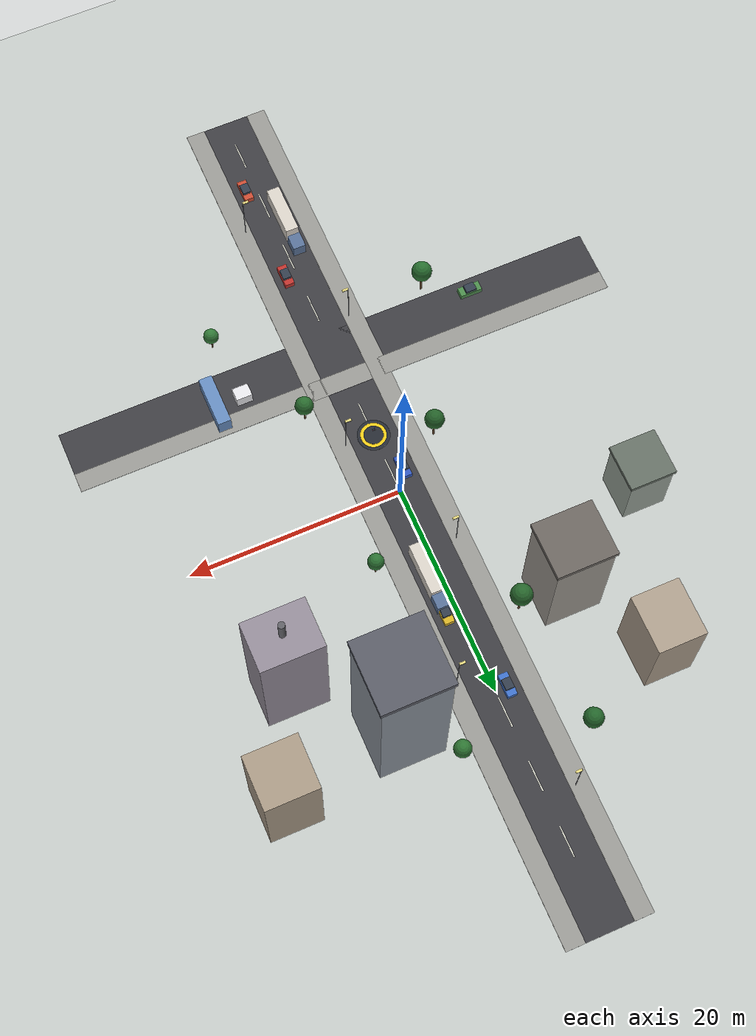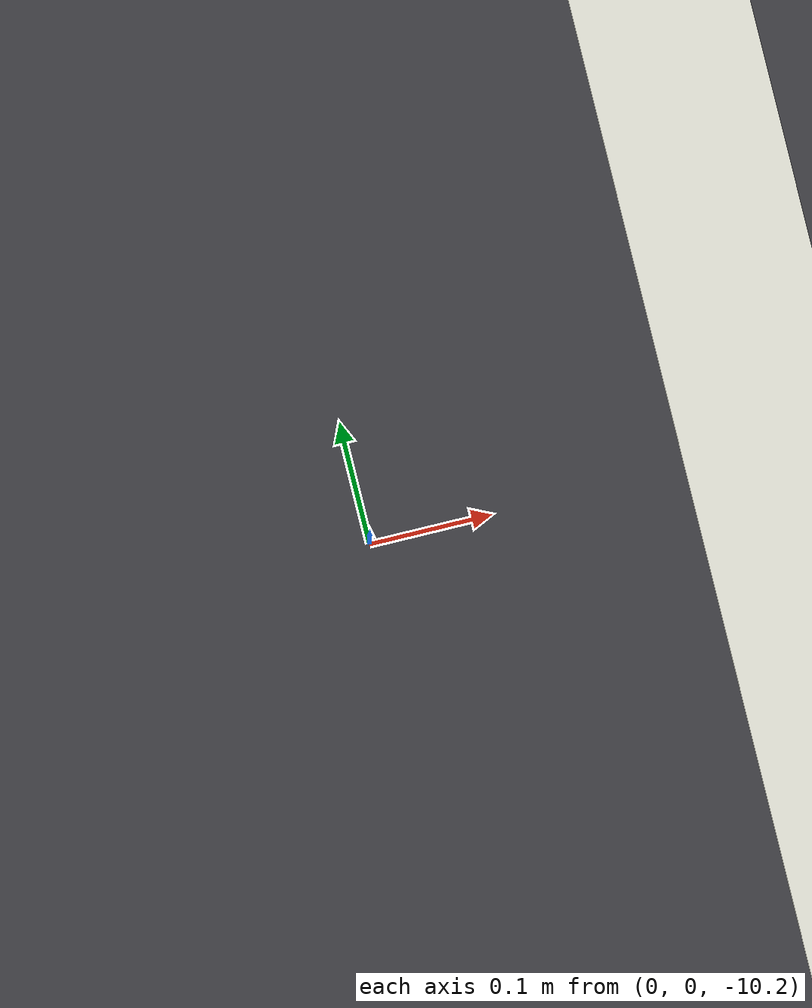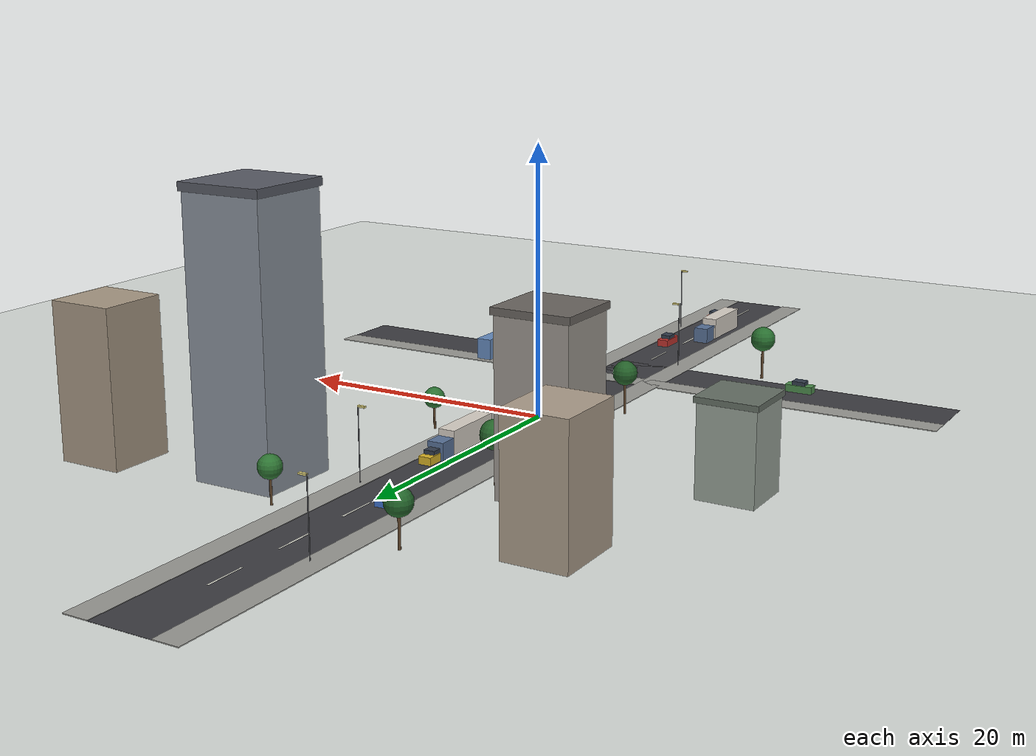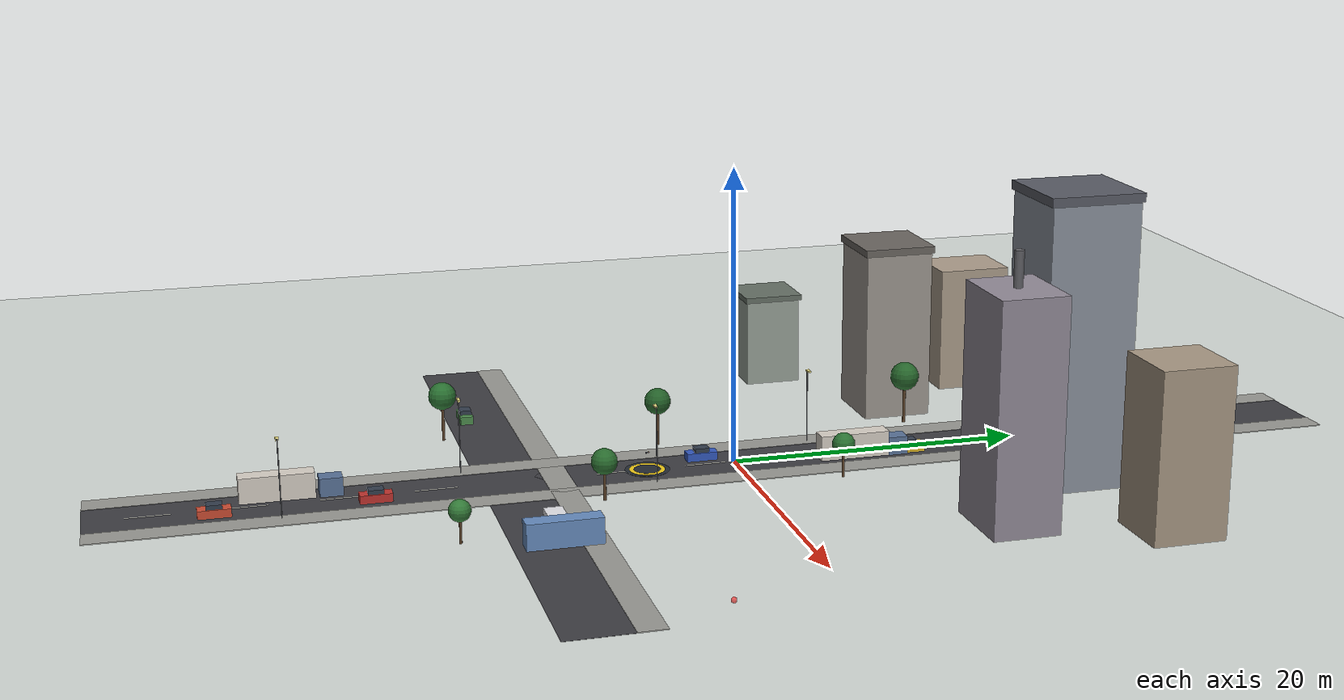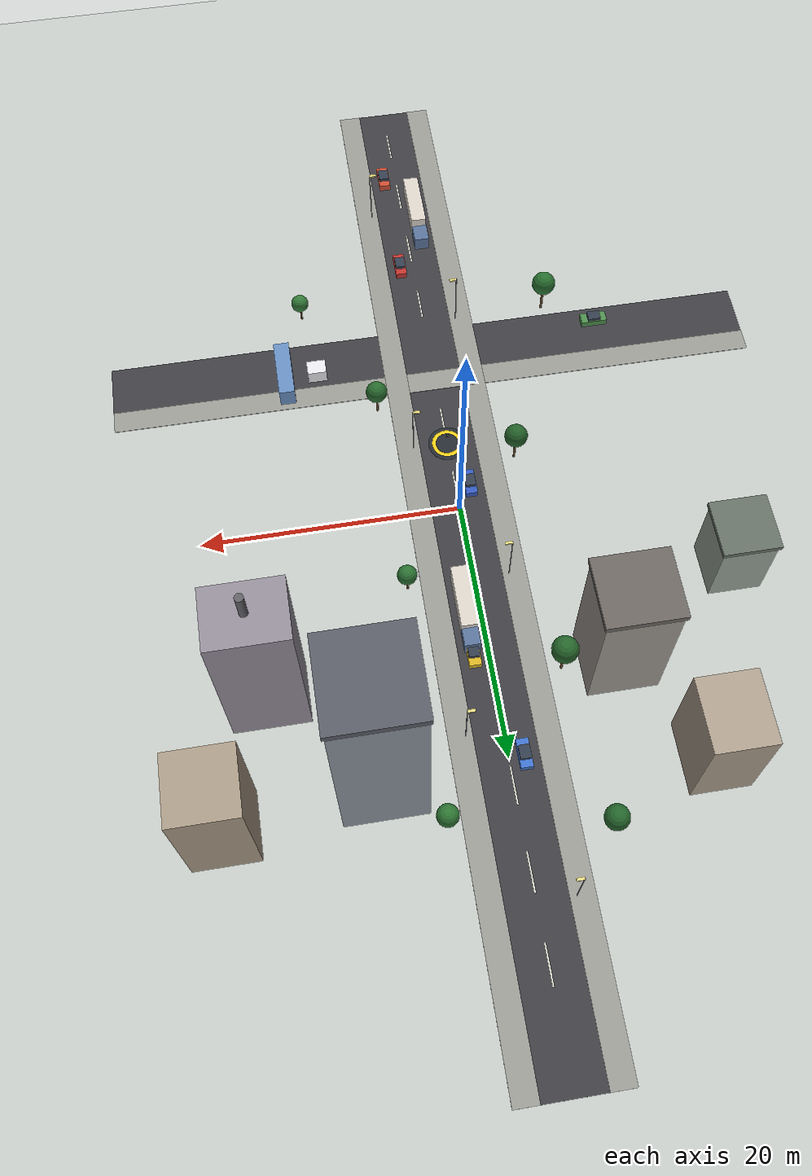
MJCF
<?xml version="1.0" encoding="utf-8"?>
<mujoco model="paper_quadrotor_city">
  <option timestep="1e-4" gravity="0 0 -9.81" integrator="implicitfast"/>

  <visual>
    <headlight ambient="0.4 0.4 0.4" diffuse="0.6 0.6 0.6" specular="0.12 0.12 0.12"/>
    <global offwidth="1920" offheight="1080"/>
    <map znear="0.01" zfar="120"/>
  </visual>

  <asset>
    <texture type="skybox" builtin="gradient" rgb1="0.5 0.6 0.78" rgb2="0.92 0.93 0.96" width="256" height="256"/>
    <texture name="grass" type="2d" builtin="checker" rgb1="0.30 0.40 0.26" rgb2="0.36 0.46 0.30" width="200" height="200"/>
    <material name="groundmat" texture="grass" texrepeat="14 14" specular="0.05"/>
  </asset>

  <worldbody>
    <light directional="true" castshadow="true" pos="6 6 14" dir="0 0 -1"/>
    <light directional="true" pos="-8 -6 10" dir="0.3 0.2 -1" diffuse="0.25 0.27 0.3"/>

    <!-- ground (collision) -->
    <geom name="floor" type="plane" size="60 60 0.1" material="groundmat"
          rgba="0.7 0.75 0.7 1" friction="1.0 0.5 0.5"/>

    <!-- ============ ROADS (visual) ====================================== -->
    <geom name="road_ns" type="box" size="2.2 42 0.01" pos="0 0 0.011"
          rgba="0.24 0.24 0.26 1" contype="0" conaffinity="0"/>
    <geom name="road_ew" type="box" size="26 2.2 0.01" pos="0 -15 0.011"
          rgba="0.24 0.24 0.26 1" contype="0" conaffinity="0"/>
    <!-- lane dashes -->
    <geom name="dash1" type="box" size="0.06 1.4 0.005" pos="0 -38 0.021" rgba="0.9 0.9 0.85 1" contype="0" conaffinity="0"/>
    <geom name="dash2" type="box" size="0.06 1.4 0.005" pos="0 -32 0.021" rgba="0.9 0.9 0.85 1" contype="0" conaffinity="0"/>
    <geom name="dash3" type="box" size="0.06 1.4 0.005" pos="0 -26 0.021" rgba="0.9 0.9 0.85 1" contype="0" conaffinity="0"/>
    <geom name="dash4" type="box" size="0.06 1.4 0.005" pos="0 -20 0.021" rgba="0.9 0.9 0.85 1" contype="0" conaffinity="0"/>
    <geom name="dash5" type="box" size="0.06 1.4 0.005" pos="0 -8 0.021" rgba="0.9 0.9 0.85 1" contype="0" conaffinity="0"/>
    <geom name="dash6" type="box" size="0.06 1.4 0.005" pos="0 -2 0.021" rgba="0.9 0.9 0.85 1" contype="0" conaffinity="0"/>
    <geom name="dash7" type="box" size="0.06 1.4 0.005" pos="0 4 0.021" rgba="0.9 0.9 0.85 1" contype="0" conaffinity="0"/>
    <geom name="dash8" type="box" size="0.06 1.4 0.005" pos="0 10 0.021" rgba="0.9 0.9 0.85 1" contype="0" conaffinity="0"/>
    <geom name="dash9" type="box" size="0.06 1.4 0.005" pos="0 16 0.021" rgba="0.9 0.9 0.85 1" contype="0" conaffinity="0"/>
    <geom name="dash10" type="box" size="0.06 1.4 0.005" pos="0 22 0.021" rgba="0.9 0.9 0.85 1" contype="0" conaffinity="0"/>
    <geom name="dash11" type="box" size="0.06 1.4 0.005" pos="0 28 0.021" rgba="0.9 0.9 0.85 1" contype="0" conaffinity="0"/>
    <geom name="dash12" type="box" size="0.06 1.4 0.005" pos="0 34 0.021" rgba="0.9 0.9 0.85 1" contype="0" conaffinity="0"/>

    <!-- sidewalks (collision, slight raise) -->
    <geom name="sidewalk_e" type="box" size="0.9 42 0.03" pos="3.1 0 0.03" rgba="0.6 0.6 0.58 1" friction="1 0.5 0.5"/>
    <geom name="sidewalk_w" type="box" size="0.9 42 0.03" pos="-3.1 0 0.03" rgba="0.6 0.6 0.58 1" friction="1 0.5 0.5"/>
    <geom name="sidewalk_n" type="box" size="26 0.9 0.03" pos="0 -12.1 0.03" rgba="0.6 0.6 0.58 1" friction="1 0.5 0.5"/>

    <!-- helipad launch area -->
    <geom name="pad_base" type="cylinder" size="1.5 0.02" pos="0 -6 0.02"
          rgba="0.15 0.17 0.2 1" friction="1 0.5 0.5"/>
    <geom name="pad_ring" type="cylinder" size="1.2 0.025" pos="0 -6 0.026"
          rgba="0.95 0.8 0.1 1" contype="0" conaffinity="0"/>
    <geom name="pad_inner" type="cylinder" size="0.9 0.028" pos="0 -6 0.028"
          rgba="0.15 0.17 0.2 1" contype="0" conaffinity="0"/>

    <!-- ============ BUILDINGS (collision) =============================== -->
    <geom name="bldg_1" type="box" size="2.6 2.4 6.0" pos="-9 14 6.0" rgba="0.62 0.60 0.57 1"/>
    <geom name="bldg_1r" type="box" size="2.75 2.55 0.25" pos="-9 14 12.1" rgba="0.42 0.4 0.38 1"/>
    <geom name="bldg_2" type="box" size="3.0 3.0 9.5" pos="9 20 9.5" rgba="0.55 0.58 0.62 1"/>
    <geom name="bldg_2r" type="box" size="3.15 3.15 0.3" pos="9 20 19.1" rgba="0.35 0.36 0.4 1"/>
    <geom name="bldg_3" type="box" size="2.2 2.6 4.5" pos="-14 22 4.5" rgba="0.68 0.62 0.55 1"/>
    <geom name="bldg_4" type="box" size="2.8 2.2 7.5" pos="16 13 7.5" rgba="0.58 0.55 0.6 1"/>
    <geom name="bldg_4r" type="cylinder" size="0.3 1.4" pos="16 13 15.9" rgba="0.38 0.38 0.4 1"/>
    <geom name="bldg_5" type="box" size="2.4 2.4 5.5" pos="20 22 5.5" rgba="0.66 0.6 0.52 1"/>
    <geom name="bldg_6" type="box" size="2.0 2.0 3.2" pos="-19 8 3.2" rgba="0.6 0.64 0.6 1"/>
    <geom name="bldg_6r" type="box" size="2.15 2.15 0.2" pos="-19 8 6.5" rgba="0.4 0.44 0.4 1"/>

    <!-- ============ TREES (trunk + canopy, both collision) ================ -->
    <geom name="tree_1_trunk" type="cylinder" size="0.09 1.4" pos="5 -10 1.4" rgba="0.36 0.26 0.16 1"/>
    <geom name="tree_1_top" type="sphere" size="0.85" pos="5 -10 2.6" rgba="0.16 0.42 0.18 1"/>
    <geom name="tree_2_trunk" type="cylinder" size="0.09 1.6" pos="-5 -4 1.6" rgba="0.36 0.26 0.16 1"/>
    <geom name="tree_2_top" type="sphere" size="0.9" pos="-5 -4 3.1" rgba="0.14 0.38 0.16 1"/>
    <geom name="tree_3_trunk" type="cylinder" size="0.08 1.2" pos="5 6 1.2" rgba="0.36 0.26 0.16 1"/>
    <geom name="tree_3_top" type="sphere" size="0.75" pos="5 6 2.3" rgba="0.17 0.45 0.2 1"/>
    <geom name="tree_4_trunk" type="cylinder" size="0.1 1.8" pos="-5 14 1.8" rgba="0.36 0.26 0.16 1"/>
    <geom name="tree_4_top" type="sphere" size="1.0" pos="-5 14 3.4" rgba="0.15 0.4 0.17 1"/>
    <geom name="tree_5_trunk" type="cylinder" size="0.08 1.3" pos="5 24 1.3" rgba="0.36 0.26 0.16 1"/>
    <geom name="tree_5_top" type="sphere" size="0.8" pos="5 24 2.5" rgba="0.18 0.46 0.2 1"/>
    <geom name="tree_6_trunk" type="cylinder" size="0.09 1.5" pos="-6 26 1.5" rgba="0.36 0.26 0.16 1"/>
    <geom name="tree_6_top" type="sphere" size="0.9" pos="-6 26 2.9" rgba="0.14 0.4 0.17 1"/>
    <geom name="tree_7_trunk" type="cylinder" size="0.1 1.7" pos="-10 -18 1.7" rgba="0.36 0.26 0.16 1"/>
    <geom name="tree_7_top" type="sphere" size="0.95" pos="-10 -18 3.2" rgba="0.16 0.44 0.19 1"/>
    <geom name="tree_8_trunk" type="cylinder" size="0.08 1.1" pos="10 -20 1.1" rgba="0.36 0.26 0.16 1"/>
    <geom name="tree_8_top" type="sphere" size="0.7" pos="10 -20 2.1" rgba="0.2 0.48 0.22 1"/>

    <!-- ============ CARS on roads (collision, static) ==================== -->
    <!-- car: body + cabin, oriented along the N-S road -->
    <geom name="car_1" type="box" size="0.45 1.05 0.28" pos="1.1 -24 0.3" rgba="0.75 0.2 0.18 1"/>
    <geom name="car_1c" type="box" size="0.4 0.5 0.22" pos="1.1 -24 0.66" rgba="0.2 0.24 0.3 1" contype="0" conaffinity="0"/>
    <geom name="car_2" type="box" size="0.45 1.05 0.28" pos="-1.1 -2 0.3" rgba="0.2 0.35 0.75 1"/>
    <geom name="car_2c" type="box" size="0.4 0.5 0.22" pos="-1.1 -2 0.66" rgba="0.2 0.24 0.3 1" contype="0" conaffinity="0"/>
    <geom name="car_3" type="box" size="0.45 1.05 0.28" pos="1.1 12 0.3" rgba="0.85 0.7 0.15 1"/>
    <geom name="car_3c" type="box" size="0.4 0.5 0.22" pos="1.1 12 0.66" rgba="0.2 0.24 0.3 1" contype="0" conaffinity="0"/>
    <!-- car on the E-W road (rotated 90 deg) -->
    <geom name="car_4" type="box" size="1.05 0.45 0.28" pos="-14 -15.9 0.3" rgba="0.3 0.55 0.3 1"/>
    <geom name="car_4c" type="box" size="0.5 0.4 0.22" pos="-14 -15.9 0.66" rgba="0.2 0.24 0.3 1" contype="0" conaffinity="0"/>

    <!-- ============ TRUCKS (bigger, distinct: cab + trailer) ============= -->
    <geom name="truck_1_trailer" type="box" size="0.62 2.4 0.85" pos="-1.1 -30 0.9" rgba="0.85 0.82 0.78 1"/>
    <geom name="truck_1_cab" type="box" size="0.6 0.75 0.62" pos="-1.1 -26.6 0.64" rgba="0.35 0.45 0.6 1"/>
    <geom name="truck_2_trailer" type="box" size="0.62 2.4 0.85" pos="12 -14.1 0.9" rgba="0.4 0.55 0.75 1"/>
    <geom name="truck_2_cab" type="box" size="0.75 0.6 0.62" pos="9.4 -14.1 0.64" rgba="0.9 0.9 0.92 1"/>

    <!-- ============ STREET LAMPS (pole collision, head visual) =========== -->
    <geom name="lamp_1_pole" type="cylinder" size="0.035 2.6" pos="2.7 -30 2.6" rgba="0.35 0.36 0.38 1"/>
    <geom name="lamp_1_head" type="box" size="0.28 0.1 0.06" pos="2.42 -30 5.15" rgba="0.9 0.85 0.5 1" contype="0" conaffinity="0"/>
    <geom name="lamp_2_pole" type="cylinder" size="0.035 2.6" pos="-2.7 -18 2.6" rgba="0.35 0.36 0.38 1"/>
    <geom name="lamp_2_head" type="box" size="0.28 0.1 0.06" pos="-2.42 -18 5.15" rgba="0.9 0.85 0.5 1" contype="0" conaffinity="0"/>
    <geom name="lamp_3_pole" type="cylinder" size="0.035 2.6" pos="2.7 -6 2.6" rgba="0.35 0.36 0.38 1"/>
    <geom name="lamp_3_head" type="box" size="0.28 0.1 0.06" pos="2.42 -6 5.15" rgba="0.9 0.85 0.5 1" contype="0" conaffinity="0"/>
    <geom name="lamp_4_pole" type="cylinder" size="0.035 2.6" pos="-2.7 6 2.6" rgba="0.35 0.36 0.38 1"/>
    <geom name="lamp_4_head" type="box" size="0.28 0.1 0.06" pos="-2.42 6 5.15" rgba="0.9 0.85 0.5 1" contype="0" conaffinity="0"/>
    <geom name="lamp_5_pole" type="cylinder" size="0.035 2.6" pos="2.7 18 2.6" rgba="0.35 0.36 0.38 1"/>
    <geom name="lamp_5_head" type="box" size="0.28 0.1 0.06" pos="2.42 18 5.15" rgba="0.9 0.85 0.5 1" contype="0" conaffinity="0"/>
    <geom name="lamp_6_pole" type="cylinder" size="0.035 2.6" pos="-2.7 30 2.6" rgba="0.35 0.36 0.38 1"/>
    <geom name="lamp_6_head" type="box" size="0.28 0.1 0.06" pos="-2.42 30 5.15" rgba="0.9 0.85 0.5 1" contype="0" conaffinity="0"/>

    <body name="car_m1" pos="1.1 -34 0.3">
      <freejoint name="car_m1_j"/>
      <geom name="car_m1" type="box" size="0.45 1.05 0.28" rgba="0.8 0.3 0.2 1" friction="1 0.5 0.5"/>
      <geom name="car_m1c" type="box" size="0.4 0.5 0.22" pos="0 0 0.36" rgba="0.2 0.24 0.3 1" contype="0" conaffinity="0"/>
    </body>
    <body name="car_m2" pos="-1.1 20 0.3">
      <freejoint name="car_m2_j"/>
      <geom name="car_m2" type="box" size="0.45 1.05 0.28" rgba="0.25 0.45 0.8 1" friction="1 0.5 0.5"/>
      <geom name="car_m2c" type="box" size="0.4 0.5 0.22" pos="0 0 0.36" rgba="0.2 0.24 0.3 1" contype="0" conaffinity="0"/>
    </body>
    <body name="truck_m1" pos="1.1 8 0.9">
      <freejoint name="truck_m1_j"/>
      <geom name="truck_m1_trailer" type="box" size="0.62 2.4 0.85" rgba="0.85 0.82 0.78 1" friction="1 0.5 0.5"/>
      <geom name="truck_m1_cab" type="box" size="0.6 0.75 0.62" pos="0 3.0 -0.26" rgba="0.35 0.45 0.6 1" contype="0" conaffinity="0"/>
    </body>

    <geom name="mk_d0" type="sphere" size="0.07" pos="0 0 -10" rgba="1 0.85 0.2 0.9" contype="0" conaffinity="0"/>
    <geom name="mk_d1" type="sphere" size="0.07" pos="0 0 -10" rgba="1 0.85 0.2 0.9" contype="0" conaffinity="0"/>
    <geom name="mk_d2" type="sphere" size="0.07" pos="0 0 -10" rgba="1 0.85 0.2 0.9" contype="0" conaffinity="0"/>
    <geom name="mk_d3" type="sphere" size="0.07" pos="0 0 -10" rgba="1 0.85 0.2 0.9" contype="0" conaffinity="0"/>
    <geom name="mk_d4" type="sphere" size="0.07" pos="0 0 -10" rgba="1 0.85 0.2 0.9" contype="0" conaffinity="0"/>
    <geom name="mk_d5" type="sphere" size="0.07" pos="0 0 -10" rgba="1 0.85 0.2 0.9" contype="0" conaffinity="0"/>
    <geom name="mk_d6" type="sphere" size="0.07" pos="0 0 -10" rgba="1 0.85 0.2 0.9" contype="0" conaffinity="0"/>
    <geom name="mk_d7" type="sphere" size="0.07" pos="0 0 -10" rgba="1 0.85 0.2 0.9" contype="0" conaffinity="0"/>
    <geom name="mk_d8" type="sphere" size="0.07" pos="0 0 -10" rgba="1 0.85 0.2 0.9" contype="0" conaffinity="0"/>
    <geom name="mk_d9" type="sphere" size="0.07" pos="0 0 -10" rgba="1 0.85 0.2 0.9" contype="0" conaffinity="0"/>
    <geom name="mk_d10" type="sphere" size="0.07" pos="0 0 -10" rgba="1 0.85 0.2 0.9" contype="0" conaffinity="0"/>
    <geom name="mk_d11" type="sphere" size="0.07" pos="0 0 -10" rgba="1 0.85 0.2 0.9" contype="0" conaffinity="0"/>
    <geom name="mk_d12" type="sphere" size="0.07" pos="0 0 -10" rgba="1 0.85 0.2 0.9" contype="0" conaffinity="0"/>
    <geom name="mk_d13" type="sphere" size="0.07" pos="0 0 -10" rgba="1 0.85 0.2 0.9" contype="0" conaffinity="0"/>
    <geom name="mk_d14" type="sphere" size="0.07" pos="0 0 -10" rgba="1 0.85 0.2 0.9" contype="0" conaffinity="0"/>
    <geom name="mk_d15" type="sphere" size="0.07" pos="0 0 -10" rgba="1 0.85 0.2 0.9" contype="0" conaffinity="0"/>
    <geom name="mk_d16" type="sphere" size="0.07" pos="0 0 -10" rgba="1 0.85 0.2 0.9" contype="0" conaffinity="0"/>
    <geom name="mk_d17" type="sphere" size="0.07" pos="0 0 -10" rgba="1 0.85 0.2 0.9" contype="0" conaffinity="0"/>
    <geom name="mk_d18" type="sphere" size="0.07" pos="0 0 -10" rgba="1 0.85 0.2 0.9" contype="0" conaffinity="0"/>
    <geom name="mk_d19" type="sphere" size="0.07" pos="0 0 -10" rgba="1 0.85 0.2 0.9" contype="0" conaffinity="0"/>
    <geom name="mk_d20" type="sphere" size="0.07" pos="0 0 -10" rgba="1 0.85 0.2 0.9" contype="0" conaffinity="0"/>
    <geom name="mk_d21" type="sphere" size="0.07" pos="0 0 -10" rgba="1 0.85 0.2 0.9" contype="0" conaffinity="0"/>
    <geom name="mk_d22" type="sphere" size="0.07" pos="0 0 -10" rgba="1 0.85 0.2 0.9" contype="0" conaffinity="0"/>
    <geom name="mk_d23" type="sphere" size="0.07" pos="0 0 -10" rgba="1 0.85 0.2 0.9" contype="0" conaffinity="0"/>
    <geom name="mk_d24" type="sphere" size="0.07" pos="0 0 -10" rgba="1 0.85 0.2 0.9" contype="0" conaffinity="0"/>
    <geom name="mk_d25" type="sphere" size="0.07" pos="0 0 -10" rgba="1 0.85 0.2 0.9" contype="0" conaffinity="0"/>
    <geom name="mk_d26" type="sphere" size="0.07" pos="0 0 -10" rgba="1 0.85 0.2 0.9" contype="0" conaffinity="0"/>
    <geom name="mk_d27" type="sphere" size="0.07" pos="0 0 -10" rgba="1 0.85 0.2 0.9" contype="0" conaffinity="0"/>
    <geom name="mk_d28" type="sphere" size="0.07" pos="0 0 -10" rgba="1 0.85 0.2 0.9" contype="0" conaffinity="0"/>
    <geom name="mk_d29" type="sphere" size="0.07" pos="0 0 -10" rgba="1 0.85 0.2 0.9" contype="0" conaffinity="0"/>
    <geom name="mk_d30" type="sphere" size="0.07" pos="0 0 -10" rgba="1 0.85 0.2 0.9" contype="0" conaffinity="0"/>
    <geom name="mk_d31" type="sphere" size="0.07" pos="0 0 -10" rgba="1 0.85 0.2 0.9" contype="0" conaffinity="0"/>
    <geom name="mk_d32" type="sphere" size="0.07" pos="0 0 -10" rgba="1 0.85 0.2 0.9" contype="0" conaffinity="0"/>
    <geom name="mk_d33" type="sphere" size="0.07" pos="0 0 -10" rgba="1 0.85 0.2 0.9" contype="0" conaffinity="0"/>
    <geom name="mk_d34" type="sphere" size="0.07" pos="0 0 -10" rgba="1 0.85 0.2 0.9" contype="0" conaffinity="0"/>
    <geom name="mk_d35" type="sphere" size="0.07" pos="0 0 -10" rgba="1 0.85 0.2 0.9" contype="0" conaffinity="0"/>
    <geom name="mk_d36" type="sphere" size="0.07" pos="0 0 -10" rgba="1 0.85 0.2 0.9" contype="0" conaffinity="0"/>
    <geom name="mk_d37" type="sphere" size="0.07" pos="0 0 -10" rgba="1 0.85 0.2 0.9" contype="0" conaffinity="0"/>
    <geom name="mk_d38" type="sphere" size="0.07" pos="0 0 -10" rgba="1 0.85 0.2 0.9" contype="0" conaffinity="0"/>
    <geom name="mk_d39" type="sphere" size="0.07" pos="0 0 -10" rgba="1 0.85 0.2 0.9" contype="0" conaffinity="0"/>
    <geom name="mk_d40" type="sphere" size="0.07" pos="0 0 -10" rgba="1 0.85 0.2 0.9" contype="0" conaffinity="0"/>
    <geom name="mk_d41" type="sphere" size="0.07" pos="0 0 -10" rgba="1 0.85 0.2 0.9" contype="0" conaffinity="0"/>
    <geom name="mk_d42" type="sphere" size="0.07" pos="0 0 -10" rgba="1 0.85 0.2 0.9" contype="0" conaffinity="0"/>
    <geom name="mk_d43" type="sphere" size="0.07" pos="0 0 -10" rgba="1 0.85 0.2 0.9" contype="0" conaffinity="0"/>
    <geom name="mk_d44" type="sphere" size="0.07" pos="0 0 -10" rgba="1 0.85 0.2 0.9" contype="0" conaffinity="0"/>
    <geom name="mk_d45" type="sphere" size="0.07" pos="0 0 -10" rgba="1 0.85 0.2 0.9" contype="0" conaffinity="0"/>
    <geom name="mk_d46" type="sphere" size="0.07" pos="0 0 -10" rgba="1 0.85 0.2 0.9" contype="0" conaffinity="0"/>
    <geom name="mk_d47" type="sphere" size="0.07" pos="0 0 -10" rgba="1 0.85 0.2 0.9" contype="0" conaffinity="0"/>
    <geom name="mk_d48" type="sphere" size="0.07" pos="0 0 -10" rgba="1 0.85 0.2 0.9" contype="0" conaffinity="0"/>
    <geom name="mk_d49" type="sphere" size="0.07" pos="0 0 -10" rgba="1 0.85 0.2 0.9" contype="0" conaffinity="0"/>
    <geom name="mk_d50" type="sphere" size="0.07" pos="0 0 -10" rgba="1 0.85 0.2 0.9" contype="0" conaffinity="0"/>
    <geom name="mk_d51" type="sphere" size="0.07" pos="0 0 -10" rgba="1 0.85 0.2 0.9" contype="0" conaffinity="0"/>
    <geom name="mk_d52" type="sphere" size="0.07" pos="0 0 -10" rgba="1 0.85 0.2 0.9" contype="0" conaffinity="0"/>
    <geom name="mk_d53" type="sphere" size="0.07" pos="0 0 -10" rgba="1 0.85 0.2 0.9" contype="0" conaffinity="0"/>
    <geom name="mk_d54" type="sphere" size="0.07" pos="0 0 -10" rgba="1 0.85 0.2 0.9" contype="0" conaffinity="0"/>
    <geom name="mk_d55" type="sphere" size="0.07" pos="0 0 -10" rgba="1 0.85 0.2 0.9" contype="0" conaffinity="0"/>
    <geom name="mk_d56" type="sphere" size="0.07" pos="0 0 -10" rgba="1 0.85 0.2 0.9" contype="0" conaffinity="0"/>
    <geom name="mk_d57" type="sphere" size="0.07" pos="0 0 -10" rgba="1 0.85 0.2 0.9" contype="0" conaffinity="0"/>
    <geom name="mk_d58" type="sphere" size="0.07" pos="0 0 -10" rgba="1 0.85 0.2 0.9" contype="0" conaffinity="0"/>
    <geom name="mk_d59" type="sphere" size="0.07" pos="0 0 -10" rgba="1 0.85 0.2 0.9" contype="0" conaffinity="0"/>
    <geom name="mk_d60" type="sphere" size="0.07" pos="0 0 -10" rgba="1 0.85 0.2 0.9" contype="0" conaffinity="0"/>
    <geom name="mk_d61" type="sphere" size="0.07" pos="0 0 -10" rgba="1 0.85 0.2 0.9" contype="0" conaffinity="0"/>
    <geom name="mk_d62" type="sphere" size="0.07" pos="0 0 -10" rgba="1 0.85 0.2 0.9" contype="0" conaffinity="0"/>
    <geom name="mk_d63" type="sphere" size="0.07" pos="0 0 -10" rgba="1 0.85 0.2 0.9" contype="0" conaffinity="0"/>
    <geom name="mk_d64" type="sphere" size="0.07" pos="0 0 -10" rgba="1 0.85 0.2 0.9" contype="0" conaffinity="0"/>
    <geom name="mk_d65" type="sphere" size="0.07" pos="0 0 -10" rgba="1 0.85 0.2 0.9" contype="0" conaffinity="0"/>
    <geom name="mk_d66" type="sphere" size="0.07" pos="0 0 -10" rgba="1 0.85 0.2 0.9" contype="0" conaffinity="0"/>
    <geom name="mk_d67" type="sphere" size="0.07" pos="0 0 -10" rgba="1 0.85 0.2 0.9" contype="0" conaffinity="0"/>
    <geom name="mk_d68" type="sphere" size="0.07" pos="0 0 -10" rgba="1 0.85 0.2 0.9" contype="0" conaffinity="0"/>
    <geom name="mk_d69" type="sphere" size="0.07" pos="0 0 -10" rgba="1 0.85 0.2 0.9" contype="0" conaffinity="0"/>
    <geom name="mk_d70" type="sphere" size="0.07" pos="0 0 -10" rgba="1 0.85 0.2 0.9" contype="0" conaffinity="0"/>
    <geom name="mk_d71" type="sphere" size="0.07" pos="0 0 -10" rgba="1 0.85 0.2 0.9" contype="0" conaffinity="0"/>
    <geom name="mk_d72" type="sphere" size="0.07" pos="0 0 -10" rgba="1 0.85 0.2 0.9" contype="0" conaffinity="0"/>
    <geom name="mk_d73" type="sphere" size="0.07" pos="0 0 -10" rgba="1 0.85 0.2 0.9" contype="0" conaffinity="0"/>
    <geom name="mk_d74" type="sphere" size="0.07" pos="0 0 -10" rgba="1 0.85 0.2 0.9" contype="0" conaffinity="0"/>
    <geom name="mk_d75" type="sphere" size="0.07" pos="0 0 -10" rgba="1 0.85 0.2 0.9" contype="0" conaffinity="0"/>
    <geom name="mk_d76" type="sphere" size="0.07" pos="0 0 -10" rgba="1 0.85 0.2 0.9" contype="0" conaffinity="0"/>
    <geom name="mk_d77" type="sphere" size="0.07" pos="0 0 -10" rgba="1 0.85 0.2 0.9" contype="0" conaffinity="0"/>
    <geom name="mk_d78" type="sphere" size="0.07" pos="0 0 -10" rgba="1 0.85 0.2 0.9" contype="0" conaffinity="0"/>
    <geom name="mk_d79" type="sphere" size="0.07" pos="0 0 -10" rgba="1 0.85 0.2 0.9" contype="0" conaffinity="0"/>
    <geom name="mk_d80" type="sphere" size="0.07" pos="0 0 -10" rgba="1 0.85 0.2 0.9" contype="0" conaffinity="0"/>
    <geom name="mk_d81" type="sphere" size="0.07" pos="0 0 -10" rgba="1 0.85 0.2 0.9" contype="0" conaffinity="0"/>
    <geom name="mk_d82" type="sphere" size="0.07" pos="0 0 -10" rgba="1 0.85 0.2 0.9" contype="0" conaffinity="0"/>
    <geom name="mk_d83" type="sphere" size="0.07" pos="0 0 -10" rgba="1 0.85 0.2 0.9" contype="0" conaffinity="0"/>
    <geom name="mk_d84" type="sphere" size="0.07" pos="0 0 -10" rgba="1 0.85 0.2 0.9" contype="0" conaffinity="0"/>
    <geom name="mk_d85" type="sphere" size="0.07" pos="0 0 -10" rgba="1 0.85 0.2 0.9" contype="0" conaffinity="0"/>
    <geom name="mk_d86" type="sphere" size="0.07" pos="0 0 -10" rgba="1 0.85 0.2 0.9" contype="0" conaffinity="0"/>
    <geom name="mk_d87" type="sphere" size="0.07" pos="0 0 -10" rgba="1 0.85 0.2 0.9" contype="0" conaffinity="0"/>
    <geom name="mk_d88" type="sphere" size="0.07" pos="0 0 -10" rgba="1 0.85 0.2 0.9" contype="0" conaffinity="0"/>
    <geom name="mk_d89" type="sphere" size="0.07" pos="0 0 -10" rgba="1 0.85 0.2 0.9" contype="0" conaffinity="0"/>
    <geom name="mk_d90" type="sphere" size="0.07" pos="0 0 -10" rgba="1 0.85 0.2 0.9" contype="0" conaffinity="0"/>
    <geom name="mk_d91" type="sphere" size="0.07" pos="0 0 -10" rgba="1 0.85 0.2 0.9" contype="0" conaffinity="0"/>
    <geom name="mk_d92" type="sphere" size="0.07" pos="0 0 -10" rgba="1 0.85 0.2 0.9" contype="0" conaffinity="0"/>
    <geom name="mk_d93" type="sphere" size="0.07" pos="0 0 -10" rgba="1 0.85 0.2 0.9" contype="0" conaffinity="0"/>
    <geom name="mk_d94" type="sphere" size="0.07" pos="0 0 -10" rgba="1 0.85 0.2 0.9" contype="0" conaffinity="0"/>
    <geom name="mk_d95" type="sphere" size="0.07" pos="0 0 -10" rgba="1 0.85 0.2 0.9" contype="0" conaffinity="0"/>
    <geom name="mk_w0" type="sphere" size="0.16" pos="0 0 -10" rgba="0.2 0.9 0.3 0.95" contype="0" conaffinity="0"/>
    <geom name="mk_w1" type="sphere" size="0.16" pos="0 0 -10" rgba="0.2 0.9 0.3 0.95" contype="0" conaffinity="0"/>
    <geom name="mk_w2" type="sphere" size="0.16" pos="0 0 -10" rgba="0.2 0.9 0.3 0.95" contype="0" conaffinity="0"/>
    <geom name="mk_w3" type="sphere" size="0.16" pos="0 0 -10" rgba="0.2 0.9 0.3 0.95" contype="0" conaffinity="0"/>
    <geom name="mk_w4" type="sphere" size="0.16" pos="0 0 -10" rgba="0.2 0.9 0.3 0.95" contype="0" conaffinity="0"/>
    <geom name="mk_w5" type="sphere" size="0.16" pos="0 0 -10" rgba="0.2 0.9 0.3 0.95" contype="0" conaffinity="0"/>
    <geom name="mk_w6" type="sphere" size="0.16" pos="0 0 -10" rgba="0.2 0.9 0.3 0.95" contype="0" conaffinity="0"/>
    <geom name="mk_w7" type="sphere" size="0.16" pos="0 0 -10" rgba="0.2 0.9 0.3 0.95" contype="0" conaffinity="0"/>
    <geom name="mk_w8" type="sphere" size="0.16" pos="0 0 -10" rgba="0.2 0.9 0.3 0.95" contype="0" conaffinity="0"/>
    <geom name="mk_w9" type="sphere" size="0.16" pos="0 0 -10" rgba="0.2 0.9 0.3 0.95" contype="0" conaffinity="0"/>
    <geom name="mk_w10" type="sphere" size="0.16" pos="0 0 -10" rgba="0.2 0.9 0.3 0.95" contype="0" conaffinity="0"/>
    <geom name="mk_w11" type="sphere" size="0.16" pos="0 0 -10" rgba="0.2 0.9 0.3 0.95" contype="0" conaffinity="0"/>
    <geom name="mk_w12" type="sphere" size="0.16" pos="0 0 -10" rgba="0.2 0.9 0.3 0.95" contype="0" conaffinity="0"/>
    <geom name="mk_w13" type="sphere" size="0.16" pos="0 0 -10" rgba="0.2 0.9 0.3 0.95" contype="0" conaffinity="0"/>
    <geom name="mk_w14" type="sphere" size="0.16" pos="0 0 -10" rgba="0.2 0.9 0.3 0.95" contype="0" conaffinity="0"/>
    <geom name="mk_w15" type="sphere" size="0.16" pos="0 0 -10" rgba="0.2 0.9 0.3 0.95" contype="0" conaffinity="0"/>
    <geom name="mk_w16" type="sphere" size="0.16" pos="0 0 -10" rgba="0.2 0.9 0.3 0.95" contype="0" conaffinity="0"/>
    <geom name="mk_w17" type="sphere" size="0.16" pos="0 0 -10" rgba="0.2 0.9 0.3 0.95" contype="0" conaffinity="0"/>
    <geom name="mk_w18" type="sphere" size="0.16" pos="0 0 -10" rgba="0.2 0.9 0.3 0.95" contype="0" conaffinity="0"/>
    <geom name="mk_w19" type="sphere" size="0.16" pos="0 0 -10" rgba="0.2 0.9 0.3 0.95" contype="0" conaffinity="0"/>
    <geom name="mk_w20" type="sphere" size="0.16" pos="0 0 -10" rgba="0.2 0.9 0.3 0.95" contype="0" conaffinity="0"/>
    <geom name="mk_w21" type="sphere" size="0.16" pos="0 0 -10" rgba="0.2 0.9 0.3 0.95" contype="0" conaffinity="0"/>
    <geom name="mk_w22" type="sphere" size="0.16" pos="0 0 -10" rgba="0.2 0.9 0.3 0.95" contype="0" conaffinity="0"/>
    <geom name="mk_w23" type="sphere" size="0.16" pos="0 0 -10" rgba="0.2 0.9 0.3 0.95" contype="0" conaffinity="0"/>
    <geom name="mk_target" type="sphere" size="0.22" pos="0 0 -10" rgba="1 0.2 0.2 1" contype="0" conaffinity="0"/>

    <!-- ============ THE PAPER DRONE (exact benchmark vehicle) ============ -->
    <body name="quadrotor" pos="0 -6 1.2">
      <freejoint name="root"/>
      <inertial pos="0 0 0" mass="0.2" diaginertia="6.5e-4 6.5e-4 1.2e-3"/>
      <!-- collision frame (group 3 = hidden) -->
      <geom name="frame" type="box" size="0.17 0.17 0.015" group="3" friction="0.8 0.5 0.5"/>
      <!-- visual shell + arms (no physics) -->
      <geom name="shell" type="ellipsoid" size="0.085 0.085 0.028" pos="0 0 0.018"
            rgba="0.22 0.24 0.28 1" contype="0" conaffinity="0"/>
      <geom name="plate" type="cylinder" size="0.09 0.008" pos="0 0 -0.004"
            rgba="0.15 0.16 0.18 1" contype="0" conaffinity="0"/>
      <geom name="arm1" type="box" size="0.075 0.007 0.005" euler="0 0 45"
            pos="0.053033 0.053033 0" rgba="0.28 0.3 0.34 1" contype="0" conaffinity="0"/>
      <geom name="arm2" type="box" size="0.075 0.007 0.005" euler="0 0 -45"
            pos="-0.053033 -0.053033 0" rgba="0.28 0.3 0.34 1" contype="0" conaffinity="0"/>
      <geom name="arm3" type="box" size="0.075 0.007 0.005" euler="0 0 -45"
            pos="0.053033 -0.053033 0" rgba="0.28 0.3 0.34 1" contype="0" conaffinity="0"/>
      <geom name="arm4" type="box" size="0.075 0.007 0.005" euler="0 0 45"
            pos="-0.053033 0.053033 0" rgba="0.28 0.3 0.34 1" contype="0" conaffinity="0"/>
      <geom name="cam" type="box" size="0.014 0.01 0.008" pos="0.098 0 0.02"
            rgba="0.1 0.1 0.1 1" contype="0" conaffinity="0"/>
      <geom name="lens" type="cylinder" size="0.004 0.006" euler="0 90 0" pos="0.113 0 0.02"
            rgba="0.05 0.08 0.12 1" contype="0" conaffinity="0"/>
      <geom name="led" type="sphere" size="0.006" pos="-0.095 0 0.02"
            rgba="1 0.1 0.1 1" contype="0" conaffinity="0"/>
      <!-- rotor mounts + prop-blur discs; colors = mixer rotor order -->
      <geom name="mount1" type="cylinder" size="0.011 0.012" pos="0.106066 0.106066 0.014" rgba="0.18 0.18 0.2 1" contype="0" conaffinity="0"/>
      <geom name="mount2" type="cylinder" size="0.011 0.012" pos="-0.106066 -0.106066 0.014" rgba="0.18 0.18 0.2 1" contype="0" conaffinity="0"/>
      <geom name="mount3" type="cylinder" size="0.011 0.012" pos="0.106066 -0.106066 0.014" rgba="0.18 0.18 0.2 1" contype="0" conaffinity="0"/>
      <geom name="mount4" type="cylinder" size="0.011 0.012" pos="-0.106066 0.106066 0.014" rgba="0.18 0.18 0.2 1" contype="0" conaffinity="0"/>
      <geom name="prop1" type="cylinder" size="0.045 0.0012" pos="0.106066 0.106066 0.03" rgba="0.9 0.2 0.2 0.32" contype="0" conaffinity="0"/>
      <geom name="prop2" type="cylinder" size="0.045 0.0012" pos="-0.106066 -0.106066 0.03" rgba="0.2 0.25 0.9 0.32" contype="0" conaffinity="0"/>
      <geom name="prop3" type="cylinder" size="0.045 0.0012" pos="0.106066 -0.106066 0.03" rgba="0.2 0.8 0.25 0.32" contype="0" conaffinity="0"/>
      <geom name="prop4" type="cylinder" size="0.045 0.0012" pos="-0.106066 0.106066 0.03" rgba="0.95 0.85 0.2 0.32" contype="0" conaffinity="0"/>
    </body>
  </worldbody>
</mujoco>
